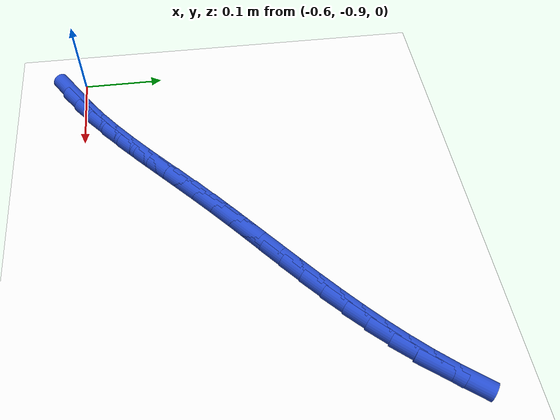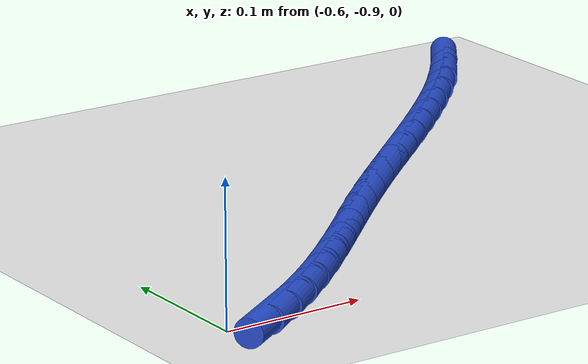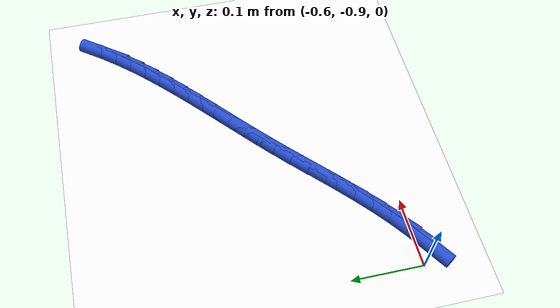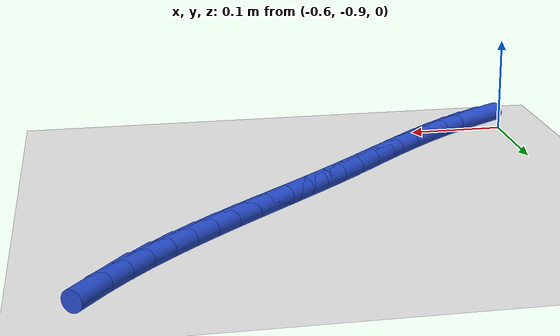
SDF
<sdf version="1.6">
 <world name="default">
  <model name="ground_plane">
   <static>1</static>
   <link name="link">
    <collision name="collision">
     <geometry><plane><normal>0 0 1</normal><size>100 100</size></plane></geometry>
     <surface><friction><ode><mu>100</mu><mu2>50</mu2></ode></friction></surface>
    </collision>
    <visual name="visual">
     <cast_shadows>0</cast_shadows>
     <geometry><plane><normal>0 0 1</normal><size>100 100</size></plane></geometry>
     <material>
      <script><uri>file://media/materials/scripts/gazebo.material</uri><name>Gazebo/WhiteGlow</name></script>
     </material>
    </visual>
   </link>
  </model>
  <model name="line">
   <link name="link_200">
    <pose>-0.5723806778181196 -0.9110883962418317 0.01 0 1.57 0.5789227497180804</pose>
    <collision name="collision">
     <geometry><cylinder><radius>0.01</radius><length>0.08</length></cylinder></geometry>
    </collision>
    <visual name="visual">
     <material>
      <script><name>Gazebo/Blue</name><uri>file://media/materials/scripts/gazebo.material</uri></script>
     </material>
     <geometry><cylinder><radius>0.01</radius><length>0.08</length></cylinder></geometry>
    </visual>
   </link>
   <link name="link_201">
    <pose>-0.5493632845288942 -0.8960435402575214 0.01 0 1.57 0.6356104144784878</pose>
    <collision name="collision">
     <geometry><cylinder><radius>0.01</radius><length>0.08</length></cylinder></geometry>
    </collision>
    <visual name="visual">
     <material>
      <script><name>Gazebo/Blue</name><uri>file://media/materials/scripts/gazebo.material</uri></script>
     </material>
     <geometry><cylinder><radius>0.01</radius><length>0.08</length></cylinder></geometry>
    </visual>
   </link>
   <link name="link_202">
    <pose>-0.5270193422004673 -0.8795594515924163 0.01 0 1.57 0.6813787580970335</pose>
    <collision name="collision">
     <geometry><cylinder><radius>0.01</radius><length>0.08</length></cylinder></geometry>
    </collision>
    <visual name="visual">
     <material>
      <script><name>Gazebo/Blue</name><uri>file://media/materials/scripts/gazebo.material</uri></script>
     </material>
     <geometry><cylinder><radius>0.01</radius><length>0.08</length></cylinder></geometry>
    </visual>
   </link>
   <link name="link_203">
    <pose>-0.5052224863309788 -0.8618834156598478 0.01 0 1.57 0.7166154808157859</pose>
    <collision name="collision">
     <geometry><cylinder><radius>0.01</radius><length>0.08</length></cylinder></geometry>
    </collision>
    <visual name="visual">
     <material>
      <script><name>Gazebo/Blue</name><uri>file://media/materials/scripts/gazebo.material</uri></script>
     </material>
     <geometry><cylinder><radius>0.01</radius><length>0.08</length></cylinder></geometry>
    </visual>
   </link>
   <link name="link_204">
    <pose>-0.4838463524185688 -0.843262717873148 0.01 0 1.57 0.7417697087671696</pose>
    <collision name="collision">
     <geometry><cylinder><radius>0.01</radius><length>0.08</length></cylinder></geometry>
    </collision>
    <visual name="visual">
     <material>
      <script><name>Gazebo/Blue</name><uri>file://media/materials/scripts/gazebo.material</uri></script>
     </material>
     <geometry><cylinder><radius>0.01</radius><length>0.08</length></cylinder></geometry>
    </visual>
   </link>
   <link name="link_205">
    <pose>-0.4627645759613771 -0.8239446436456482 0.01 0 1.57 0.7572452454444291</pose>
    <collision name="collision">
     <geometry><cylinder><radius>0.01</radius><length>0.08</length></cylinder></geometry>
    </collision>
    <visual name="visual">
     <material>
      <script><name>Gazebo/Blue</name><uri>file://media/materials/scripts/gazebo.material</uri></script>
     </material>
     <geometry><cylinder><radius>0.01</radius><length>0.08</length></cylinder></geometry>
    </visual>
   </link>
   <link name="link_206">
    <pose>-0.4418507924575434 -0.8041764783906804 0.01 0 1.57 0.7633372177559189</pose>
    <collision name="collision">
     <geometry><cylinder><radius>0.01</radius><length>0.08</length></cylinder></geometry>
    </collision>
    <visual name="visual">
     <material>
      <script><name>Gazebo/Blue</name><uri>file://media/materials/scripts/gazebo.material</uri></script>
     </material>
     <geometry><cylinder><radius>0.01</radius><length>0.08</length></cylinder></geometry>
    </visual>
   </link>
   <link name="link_207">
    <pose>-0.42097863740520763 -0.7842055075215764 0.01 0 1.57 0.7602001027844631</pose>
    <collision name="collision">
     <geometry><cylinder><radius>0.01</radius><length>0.08</length></cylinder></geometry>
    </collision>
    <visual name="visual">
     <material>
      <script><name>Gazebo/Blue</name><uri>file://media/materials/scripts/gazebo.material</uri></script>
     </material>
     <geometry><cylinder><radius>0.01</radius><length>0.08</length></cylinder></geometry>
    </visual>
   </link>
   <link name="link_208">
    <pose>-0.40002174630250914 -0.764279016451667 0.01 0 1.57 0.7480334212506785</pose>
    <collision name="collision">
     <geometry><cylinder><radius>0.01</radius><length>0.08</length></cylinder></geometry>
    </collision>
    <visual name="visual">
     <material>
      <script><name>Gazebo/Blue</name><uri>file://media/materials/scripts/gazebo.material</uri></script>
     </material>
     <geometry><cylinder><radius>0.01</radius><length>0.08</length></cylinder></geometry>
    </visual>
   </link>
   <link name="link_209">
    <pose>-0.3788569624520721 -0.7446395816350783 0.01 0 1.57 0.7331271388118027</pose>
    <collision name="collision">
     <geometry><cylinder><radius>0.01</radius><length>0.08</length></cylinder></geometry>
    </collision>
    <visual name="visual">
     <material>
      <script><name>Gazebo/Blue</name><uri>file://media/materials/scripts/gazebo.material</uri></script>
     </material>
     <geometry><cylinder><radius>0.01</radius><length>0.08</length></cylinder></geometry>
    </visual>
   </link>
   <link name="link_210">
    <pose>-0.35746608512774436 -0.7253757073592401 0.01 0 1.57 0.7231327550958317</pose>
    <collision name="collision">
     <geometry><cylinder><radius>0.01</radius><length>0.08</length></cylinder></geometry>
    </collision>
    <visual name="visual">
     <material>
      <script><name>Gazebo/Blue</name><uri>file://media/materials/scripts/gazebo.material</uri></script>
     </material>
     <geometry><cylinder><radius>0.01</radius><length>0.08</length></cylinder></geometry>
    </visual>
   </link>
   <link name="link_211">
    <pose>-0.3359568184513458 -0.7063910734323512 0.01 0 1.57 0.7185453327489877</pose>
    <collision name="collision">
     <geometry><cylinder><radius>0.01</radius><length>0.08</length></cylinder></geometry>
    </collision>
    <visual name="visual">
     <material>
      <script><name>Gazebo/Blue</name><uri>file://media/materials/scripts/gazebo.material</uri></script>
     </material>
     <geometry><cylinder><radius>0.01</radius><length>0.08</length></cylinder></geometry>
    </visual>
   </link>
   <link name="link_212">
    <pose>-0.31444430767067616 -0.6875784363164759 0.01 0 1.57 0.7194212019219901</pose>
    <collision name="collision">
     <geometry><cylinder><radius>0.01</radius><length>0.08</length></cylinder></geometry>
    </collision>
    <visual name="visual">
     <material>
      <script><name>Gazebo/Blue</name><uri>file://media/materials/scripts/gazebo.material</uri></script>
     </material>
     <geometry><cylinder><radius>0.01</radius><length>0.08</length></cylinder></geometry>
    </visual>
   </link>
   <link name="link_213">
    <pose>-0.2930436980335357 -0.6688305524736793 0.01 0 1.57 0.7258352095736911</pose>
    <collision name="collision">
     <geometry><cylinder><radius>0.01</radius><length>0.08</length></cylinder></geometry>
    </collision>
    <visual name="visual">
     <material>
      <script><name>Gazebo/Blue</name><uri>file://media/materials/scripts/gazebo.material</uri></script>
     </material>
     <geometry><cylinder><radius>0.01</radius><length>0.08</length></cylinder></geometry>
    </visual>
   </link>
   <link name="link_214">
    <pose>-0.2718701347877245 -0.6500401783660261 0.01 0 1.57 0.7378806943329401</pose>
    <collision name="collision">
     <geometry><cylinder><radius>0.01</radius><length>0.08</length></cylinder></geometry>
    </collision>
    <visual name="visual">
     <material>
      <script><name>Gazebo/Blue</name><uri>file://media/materials/scripts/gazebo.material</uri></script>
     </material>
     <geometry><cylinder><radius>0.01</radius><length>0.08</length></cylinder></geometry>
    </visual>
   </link>
   <link name="link_215">
    <pose>-0.25103876318104207 -0.6311000704555803 0.01 0 1.57 0.755664291807065</pose>
    <collision name="collision">
     <geometry><cylinder><radius>0.01</radius><length>0.08</length></cylinder></geometry>
    </collision>
    <visual name="visual">
     <material>
      <script><name>Gazebo/Blue</name><uri>file://media/materials/scripts/gazebo.material</uri></script>
     </material>
     <geometry><cylinder><radius>0.01</radius><length>0.08</length></cylinder></geometry>
    </visual>
   </link>
   <link name="link_216">
    <pose>-0.2306647284612898 -0.6119029852044084 0.01 0 1.57 0.7792948599296786</pose>
    <collision name="collision">
     <geometry><cylinder><radius>0.01</radius><length>0.08</length></cylinder></geometry>
    </collision>
    <visual name="visual">
     <material>
      <script><name>Gazebo/Blue</name><uri>file://media/materials/scripts/gazebo.material</uri></script>
     </material>
     <geometry><cylinder><radius>0.01</radius><length>0.08</length></cylinder></geometry>
    </visual>
   </link>
   <link name="link_217">
    <pose>-0.21086317587626702 -0.592341679074574 0.01 0 1.57 0.8088657037095599</pose>
    <collision name="collision">
     <geometry><cylinder><radius>0.01</radius><length>0.08</length></cylinder></geometry>
    </collision>
    <visual name="visual">
     <material>
      <script><name>Gazebo/Blue</name><uri>file://media/materials/scripts/gazebo.material</uri></script>
     </material>
     <geometry><cylinder><radius>0.01</radius><length>0.08</length></cylinder></geometry>
    </visual>
   </link>
   <link name="link_218">
    <pose>-0.1917492506737739 -0.5723089085281424 0.01 0 1.57 0.8444294587472512</pose>
    <collision name="collision">
     <geometry><cylinder><radius>0.01</radius><length>0.08</length></cylinder></geometry>
    </collision>
    <visual name="visual">
     <material>
      <script><name>Gazebo/Blue</name><uri>file://media/materials/scripts/gazebo.material</uri></script>
     </material>
     <geometry><cylinder><radius>0.01</radius><length>0.08</length></cylinder></geometry>
    </visual>
   </link>
   <link name="link_219">
    <pose>-0.17343809810161057 -0.5516974300271781 0.01 0 1.57 0.88596568606825</pose>
    <collision name="collision">
     <geometry><cylinder><radius>0.01</radius><length>0.08</length></cylinder></geometry>
    </collision>
    <visual name="visual">
     <material>
      <script><name>Gazebo/Blue</name><uri>file://media/materials/scripts/gazebo.material</uri></script>
     </material>
     <geometry><cylinder><radius>0.01</radius><length>0.08</length></cylinder></geometry>
    </visual>
   </link>
   <link name="link_220">
    <pose>-0.15604486340757703 -0.530400000033746 0.01 0 1.57 0.9333426600462735</pose>
    <collision name="collision">
     <geometry><cylinder><radius>0.01</radius><length>0.08</length></cylinder></geometry>
    </collision>
    <visual name="visual">
     <material>
      <script><name>Gazebo/Blue</name><uri>file://media/materials/scripts/gazebo.material</uri></script>
     </material>
     <geometry><cylinder><radius>0.01</radius><length>0.08</length></cylinder></geometry>
    </visual>
   </link>
  </model>
 </world>
</sdf>
